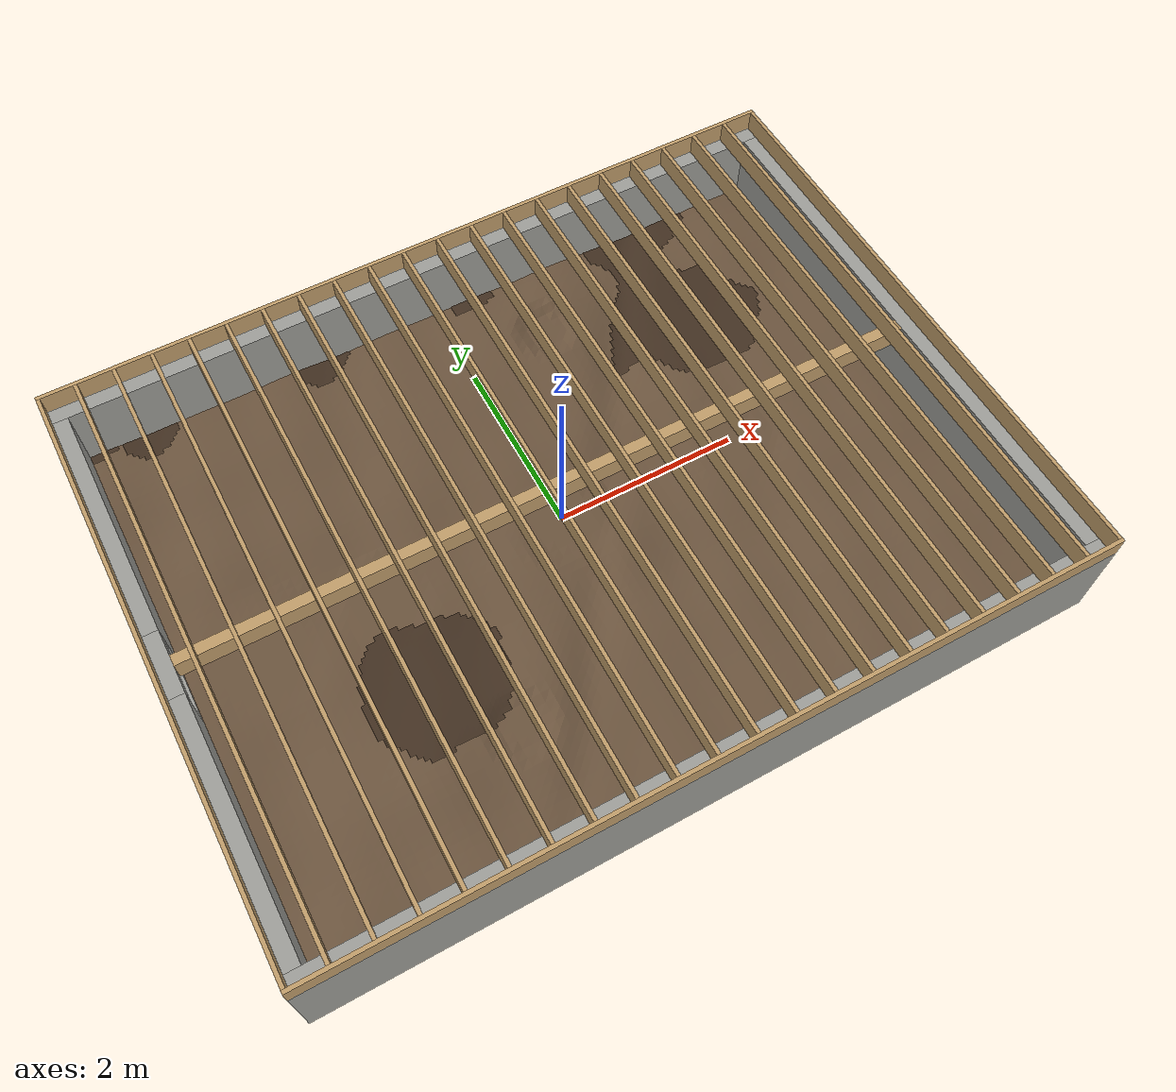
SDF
<sdf version="1.6">
 <world name="crawlspace">
  <model name="terrain">
   <static>true</static>
   <link name="link">
    <visual name="dirt">
     <geometry><mesh><uri>model://crawlspace_terrain/meshes/terrain.stl</uri></mesh></geometry>
     <material>
      <ambient>0.42 0.33 0.24 1</ambient>
      <diffuse>0.42 0.33 0.24 1</diffuse>
      <specular>0.05 0.05 0.05 1</specular>
     </material>
    </visual>
    <collision name="dirt">
     <geometry><mesh><uri>model://crawlspace_terrain/meshes/terrain.stl</uri></mesh></geometry>
    </collision>
   </link>
  </model>
  <model name="damp_soil">
   <static>true</static>
   <link name="link">
    <visual name="damp">
     <geometry><mesh><uri>model://crawlspace_terrain/meshes/damp_soil.stl</uri></mesh></geometry>
     <material>
      <ambient>0.26 0.19 0.13 1</ambient>
      <diffuse>0.26 0.19 0.13 1</diffuse>
      <specular>0.05 0.05 0.05 1</specular>
     </material>
    </visual>
   </link>
  </model>
  <model name="foundation_walls">
   <static>true</static>
   <link name="link">
    <visual name="north">
     <pose>0 3.1 0.225 0 0 0</pose>
     <geometry><box><size>8.4 0.2 1.05</size></box></geometry>
     <material>
      <ambient>0.62 0.62 0.6 1</ambient>
      <diffuse>0.62 0.62 0.6 1</diffuse>
      <specular>0.05 0.05 0.05 1</specular>
     </material>
    </visual>
    <collision name="north">
     <pose>0 3.1 0.225 0 0 0</pose>
     <geometry><box><size>8.4 0.2 1.05</size></box></geometry>
    </collision>
    <visual name="south">
     <pose>0 -3.1 0.225 0 0 0</pose>
     <geometry><box><size>8.4 0.2 1.05</size></box></geometry>
     <material>
      <ambient>0.62 0.62 0.6 1</ambient>
      <diffuse>0.62 0.62 0.6 1</diffuse>
      <specular>0.05 0.05 0.05 1</specular>
     </material>
    </visual>
    <collision name="south">
     <pose>0 -3.1 0.225 0 0 0</pose>
     <geometry><box><size>8.4 0.2 1.05</size></box></geometry>
    </collision>
    <visual name="east">
     <pose>4.1 0 0.225 0 0 0</pose>
     <geometry><box><size>0.2 6 1.05</size></box></geometry>
     <material>
      <ambient>0.62 0.62 0.6 1</ambient>
      <diffuse>0.62 0.62 0.6 1</diffuse>
      <specular>0.05 0.05 0.05 1</specular>
     </material>
    </visual>
    <collision name="east">
     <pose>4.1 0 0.225 0 0 0</pose>
     <geometry><box><size>0.2 6 1.05</size></box></geometry>
    </collision>
    <visual name="west_north">
     <pose>-4.1 1.675 0.225 0 0 0</pose>
     <geometry><box><size>0.2 2.65 1.05</size></box></geometry>
     <material>
      <ambient>0.62 0.62 0.6 1</ambient>
      <diffuse>0.62 0.62 0.6 1</diffuse>
      <specular>0.05 0.05 0.05 1</specular>
     </material>
    </visual>
    <collision name="west_north">
     <pose>-4.1 1.675 0.225 0 0 0</pose>
     <geometry><box><size>0.2 2.65 1.05</size></box></geometry>
    </collision>
    <visual name="west_south">
     <pose>-4.1 -1.675 0.225 0 0 0</pose>
     <geometry><box><size>0.2 2.65 1.05</size></box></geometry>
     <material>
      <ambient>0.62 0.62 0.6 1</ambient>
      <diffuse>0.62 0.62 0.6 1</diffuse>
      <specular>0.05 0.05 0.05 1</specular>
     </material>
    </visual>
    <collision name="west_south">
     <pose>-4.1 -1.675 0.225 0 0 0</pose>
     <geometry><box><size>0.2 2.65 1.05</size></box></geometry>
    </collision>
    <visual name="west_below_access">
     <pose>-4.1 0 -0.1 0 0 0</pose>
     <geometry><box><size>0.2 0.7 0.4</size></box></geometry>
     <material>
      <ambient>0.62 0.62 0.6 1</ambient>
      <diffuse>0.62 0.62 0.6 1</diffuse>
      <specular>0.05 0.05 0.05 1</specular>
     </material>
    </visual>
    <collision name="west_below_access">
     <pose>-4.1 0 -0.1 0 0 0</pose>
     <geometry><box><size>0.2 0.7 0.4</size></box></geometry>
    </collision>
    <visual name="west_above_access">
     <pose>-4.1 0 0.65 0 0 0</pose>
     <geometry><box><size>0.2 0.7 0.2</size></box></geometry>
     <material>
      <ambient>0.62 0.62 0.6 1</ambient>
      <diffuse>0.62 0.62 0.6 1</diffuse>
      <specular>0.05 0.05 0.05 1</specular>
     </material>
    </visual>
    <collision name="west_above_access">
     <pose>-4.1 0 0.65 0 0 0</pose>
     <geometry><box><size>0.2 0.7 0.2</size></box></geometry>
    </collision>
   </link>
  </model>
  <model name="floor_framing">
   <static>true</static>
   <link name="link">
    <visual name="girder">
     <pose>0 0 0.6325 0 0 0</pose>
     <geometry><box><size>8 0.12 0.235</size></box></geometry>
     <material>
      <ambient>0.76 0.62 0.42 1</ambient>
      <diffuse>0.76 0.62 0.42 1</diffuse>
      <specular>0.05 0.05 0.05 1</specular>
     </material>
    </visual>
    <collision name="girder">
     <pose>0 0 0.6325 0 0 0</pose>
     <geometry><box><size>8 0.12 0.235</size></box></geometry>
    </collision>
    <visual name="joist_00">
     <pose>-3.8 0 0.8675 0 0 0</pose>
     <geometry><box><size>0.04 6.32 0.235</size></box></geometry>
     <material>
      <ambient>0.76 0.62 0.42 1</ambient>
      <diffuse>0.76 0.62 0.42 1</diffuse>
      <specular>0.05 0.05 0.05 1</specular>
     </material>
    </visual>
    <collision name="joist_00">
     <pose>-3.8 0 0.8675 0 0 0</pose>
     <geometry><box><size>0.04 6.32 0.235</size></box></geometry>
    </collision>
    <visual name="joist_01">
     <pose>-3.4 0 0.8675 0 0 0</pose>
     <geometry><box><size>0.04 6.32 0.235</size></box></geometry>
     <material>
      <ambient>0.76 0.62 0.42 1</ambient>
      <diffuse>0.76 0.62 0.42 1</diffuse>
      <specular>0.05 0.05 0.05 1</specular>
     </material>
    </visual>
    <collision name="joist_01">
     <pose>-3.4 0 0.8675 0 0 0</pose>
     <geometry><box><size>0.04 6.32 0.235</size></box></geometry>
    </collision>
    <visual name="joist_02">
     <pose>-3 0 0.8675 0 0 0</pose>
     <geometry><box><size>0.04 6.32 0.235</size></box></geometry>
     <material>
      <ambient>0.76 0.62 0.42 1</ambient>
      <diffuse>0.76 0.62 0.42 1</diffuse>
      <specular>0.05 0.05 0.05 1</specular>
     </material>
    </visual>
    <collision name="joist_02">
     <pose>-3 0 0.8675 0 0 0</pose>
     <geometry><box><size>0.04 6.32 0.235</size></box></geometry>
    </collision>
    <visual name="joist_03">
     <pose>-2.6 0 0.8675 0 0 0</pose>
     <geometry><box><size>0.04 6.32 0.235</size></box></geometry>
     <material>
      <ambient>0.76 0.62 0.42 1</ambient>
      <diffuse>0.76 0.62 0.42 1</diffuse>
      <specular>0.05 0.05 0.05 1</specular>
     </material>
    </visual>
    <collision name="joist_03">
     <pose>-2.6 0 0.8675 0 0 0</pose>
     <geometry><box><size>0.04 6.32 0.235</size></box></geometry>
    </collision>
    <visual name="joist_04">
     <pose>-2.2 0 0.8675 0 0 0</pose>
     <geometry><box><size>0.04 6.32 0.235</size></box></geometry>
     <material>
      <ambient>0.76 0.62 0.42 1</ambient>
      <diffuse>0.76 0.62 0.42 1</diffuse>
      <specular>0.05 0.05 0.05 1</specular>
     </material>
    </visual>
    <collision name="joist_04">
     <pose>-2.2 0 0.8675 0 0 0</pose>
     <geometry><box><size>0.04 6.32 0.235</size></box></geometry>
    </collision>
    <visual name="joist_05">
     <pose>-1.8 0 0.8675 0 0 0</pose>
     <geometry><box><size>0.04 6.32 0.235</size></box></geometry>
     <material>
      <ambient>0.76 0.62 0.42 1</ambient>
      <diffuse>0.76 0.62 0.42 1</diffuse>
      <specular>0.05 0.05 0.05 1</specular>
     </material>
    </visual>
    <collision name="joist_05">
     <pose>-1.8 0 0.8675 0 0 0</pose>
     <geometry><box><size>0.04 6.32 0.235</size></box></geometry>
    </collision>
    <visual name="joist_06">
     <pose>-1.4 0 0.8675 0 0 0</pose>
     <geometry><box><size>0.04 6.32 0.235</size></box></geometry>
     <material>
      <ambient>0.76 0.62 0.42 1</ambient>
      <diffuse>0.76 0.62 0.42 1</diffuse>
      <specular>0.05 0.05 0.05 1</specular>
     </material>
    </visual>
    <collision name="joist_06">
     <pose>-1.4 0 0.8675 0 0 0</pose>
     <geometry><box><size>0.04 6.32 0.235</size></box></geometry>
    </collision>
    <visual name="joist_07">
     <pose>-1 0 0.8675 0 0 0</pose>
     <geometry><box><size>0.04 6.32 0.235</size></box></geometry>
     <material>
      <ambient>0.76 0.62 0.42 1</ambient>
      <diffuse>0.76 0.62 0.42 1</diffuse>
      <specular>0.05 0.05 0.05 1</specular>
     </material>
    </visual>
    <collision name="joist_07">
     <pose>-1 0 0.8675 0 0 0</pose>
     <geometry><box><size>0.04 6.32 0.235</size></box></geometry>
    </collision>
    <visual name="joist_08">
     <pose>-0.6 0 0.8675 0 0 0</pose>
     <geometry><box><size>0.04 6.32 0.235</size></box></geometry>
     <material>
      <ambient>0.76 0.62 0.42 1</ambient>
      <diffuse>0.76 0.62 0.42 1</diffuse>
      <specular>0.05 0.05 0.05 1</specular>
     </material>
    </visual>
    <collision name="joist_08">
     <pose>-0.6 0 0.8675 0 0 0</pose>
     <geometry><box><size>0.04 6.32 0.235</size></box></geometry>
    </collision>
    <visual name="joist_09">
     <pose>-0.2 0 0.8675 0 0 0</pose>
     <geometry><box><size>0.04 6.32 0.235</size></box></geometry>
     <material>
      <ambient>0.76 0.62 0.42 1</ambient>
      <diffuse>0.76 0.62 0.42 1</diffuse>
      <specular>0.05 0.05 0.05 1</specular>
     </material>
    </visual>
    <collision name="joist_09">
     <pose>-0.2 0 0.8675 0 0 0</pose>
     <geometry><box><size>0.04 6.32 0.235</size></box></geometry>
    </collision>
    <visual name="joist_10">
     <pose>0.2 0 0.8675 0 0 0</pose>
     <geometry><box><size>0.04 6.32 0.235</size></box></geometry>
     <material>
      <ambient>0.76 0.62 0.42 1</ambient>
      <diffuse>0.76 0.62 0.42 1</diffuse>
      <specular>0.05 0.05 0.05 1</specular>
     </material>
    </visual>
    <collision name="joist_10">
     <pose>0.2 0 0.8675 0 0 0</pose>
     <geometry><box><size>0.04 6.32 0.235</size></box></geometry>
    </collision>
    <visual name="joist_11">
     <pose>0.6 0 0.8675 0 0 0</pose>
     <geometry><box><size>0.04 6.32 0.235</size></box></geometry>
     <material>
      <ambient>0.76 0.62 0.42 1</ambient>
      <diffuse>0.76 0.62 0.42 1</diffuse>
      <specular>0.05 0.05 0.05 1</specular>
     </material>
    </visual>
    <collision name="joist_11">
     <pose>0.6 0 0.8675 0 0 0</pose>
     <geometry><box><size>0.04 6.32 0.235</size></box></geometry>
    </collision>
    <visual name="joist_12">
     <pose>1 0 0.8675 0 0 0</pose>
     <geometry><box><size>0.04 6.32 0.235</size></box></geometry>
     <material>
      <ambient>0.76 0.62 0.42 1</ambient>
      <diffuse>0.76 0.62 0.42 1</diffuse>
      <specular>0.05 0.05 0.05 1</specular>
     </material>
    </visual>
    <collision name="joist_12">
     <pose>1 0 0.8675 0 0 0</pose>
     <geometry><box><size>0.04 6.32 0.235</size></box></geometry>
    </collision>
    <visual name="joist_13">
     <pose>1.4 0 0.8675 0 0 0</pose>
     <geometry><box><size>0.04 6.32 0.235</size></box></geometry>
     <material>
      <ambient>0.76 0.62 0.42 1</ambient>
      <diffuse>0.76 0.62 0.42 1</diffuse>
      <specular>0.05 0.05 0.05 1</specular>
     </material>
    </visual>
    <collision name="joist_13">
     <pose>1.4 0 0.8675 0 0 0</pose>
     <geometry><box><size>0.04 6.32 0.235</size></box></geometry>
    </collision>
    <visual name="joist_14">
     <pose>1.8 0 0.8675 0 0 0</pose>
     <geometry><box><size>0.04 6.32 0.235</size></box></geometry>
     <material>
      <ambient>0.76 0.62 0.42 1</ambient>
      <diffuse>0.76 0.62 0.42 1</diffuse>
      <specular>0.05 0.05 0.05 1</specular>
     </material>
    </visual>
    <collision name="joist_14">
     <pose>1.8 0 0.8675 0 0 0</pose>
     <geometry><box><size>0.04 6.32 0.235</size></box></geometry>
    </collision>
    <visual name="joist_15">
     <pose>2.2 0 0.8675 0 0 0</pose>
     <geometry><box><size>0.04 6.32 0.235</size></box></geometry>
     <material>
      <ambient>0.76 0.62 0.42 1</ambient>
      <diffuse>0.76 0.62 0.42 1</diffuse>
      <specular>0.05 0.05 0.05 1</specular>
     </material>
    </visual>
    <collision name="joist_15">
     <pose>2.2 0 0.8675 0 0 0</pose>
     <geometry><box><size>0.04 6.32 0.235</size></box></geometry>
    </collision>
    <visual name="joist_16">
     <pose>2.6 0 0.8675 0 0 0</pose>
     <geometry><box><size>0.04 6.32 0.235</size></box></geometry>
     <material>
      <ambient>0.76 0.62 0.42 1</ambient>
      <diffuse>0.76 0.62 0.42 1</diffuse>
      <specular>0.05 0.05 0.05 1</specular>
     </material>
    </visual>
    <collision name="joist_16">
     <pose>2.6 0 0.8675 0 0 0</pose>
     <geometry><box><size>0.04 6.32 0.235</size></box></geometry>
    </collision>
    <visual name="joist_17">
     <pose>3 0 0.8675 0 0 0</pose>
     <geometry><box><size>0.04 6.32 0.235</size></box></geometry>
     <material>
      <ambient>0.76 0.62 0.42 1</ambient>
      <diffuse>0.76 0.62 0.42 1</diffuse>
      <specular>0.05 0.05 0.05 1</specular>
     </material>
    </visual>
    <collision name="joist_17">
     <pose>3 0 0.8675 0 0 0</pose>
     <geometry><box><size>0.04 6.32 0.235</size></box></geometry>
    </collision>
    <visual name="joist_18">
     <pose>3.4 0 0.8675 0 0 0</pose>
     <geometry><box><size>0.04 6.32 0.235</size></box></geometry>
     <material>
      <ambient>0.76 0.62 0.42 1</ambient>
      <diffuse>0.76 0.62 0.42 1</diffuse>
      <specular>0.05 0.05 0.05 1</specular>
     </material>
    </visual>
    <collision name="joist_18">
     <pose>3.4 0 0.8675 0 0 0</pose>
     <geometry><box><size>0.04 6.32 0.235</size></box></geometry>
    </collision>
    <visual name="joist_19">
     <pose>3.8 0 0.8675 0 0 0</pose>
     <geometry><box><size>0.04 6.32 0.235</size></box></geometry>
     <material>
      <ambient>0.76 0.62 0.42 1</ambient>
      <diffuse>0.76 0.62 0.42 1</diffuse>
      <specular>0.05 0.05 0.05 1</specular>
     </material>
    </visual>
    <collision name="joist_19">
     <pose>3.8 0 0.8675 0 0 0</pose>
     <geometry><box><size>0.04 6.32 0.235</size></box></geometry>
    </collision>
    <visual name="rim_north">
     <pose>0 3.18 0.8675 0 0 0</pose>
     <geometry><box><size>8.4 0.04 0.235</size></box></geometry>
     <material>
      <ambient>0.76 0.62 0.42 1</ambient>
      <diffuse>0.76 0.62 0.42 1</diffuse>
      <specular>0.05 0.05 0.05 1</specular>
     </material>
    </visual>
    <collision name="rim_north">
     <pose>0 3.18 0.8675 0 0 0</pose>
     <geometry><box><size>8.4 0.04 0.235</size></box></geometry>
    </collision>
    <visual name="rim_south">
     <pose>0 -3.18 0.8675 0 0 0</pose>
     <geometry><box><size>8.4 0.04 0.235</size></box></geometry>
     <material>
      <ambient>0.76 0.62 0.42 1</ambient>
      <diffuse>0.76 0.62 0.42 1</diffuse>
      <specular>0.05 0.05 0.05 1</specular>
     </material>
    </visual>
    <collision name="rim_south">
     <pose>0 -3.18 0.8675 0 0 0</pose>
     <geometry><box><size>8.4 0.04 0.235</size></box></geometry>
    </collision>
    <visual name="rim_east">
     <pose>4.18 0 0.8675 0 0 0</pose>
     <geometry><box><size>0.04 6.32 0.235</size></box></geometry>
     <material>
      <ambient>0.76 0.62 0.42 1</ambient>
      <diffuse>0.76 0.62 0.42 1</diffuse>
      <specular>0.05 0.05 0.05 1</specular>
     </material>
    </visual>
    <collision name="rim_east">
     <pose>4.18 0 0.8675 0 0 0</pose>
     <geometry><box><size>0.04 6.32 0.235</size></box></geometry>
    </collision>
    <visual name="rim_west">
     <pose>-4.18 0 0.8675 0 0 0</pose>
     <geometry><box><size>0.04 6.32 0.235</size></box></geometry>
     <material>
      <ambient>0.76 0.62 0.42 1</ambient>
      <diffuse>0.76 0.62 0.42 1</diffuse>
      <specular>0.05 0.05 0.05 1</specular>
     </material>
    </visual>
    <collision name="rim_west">
     <pose>-4.18 0 0.8675 0 0 0</pose>
     <geometry><box><size>0.04 6.32 0.235</size></box></geometry>
    </collision>
   </link>
  </model>
 </world>
</sdf>
